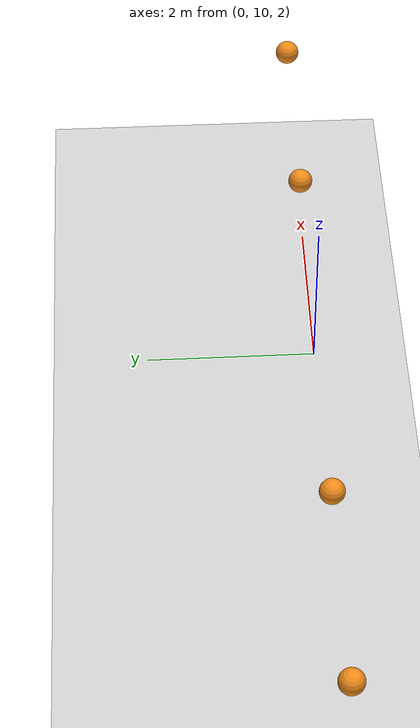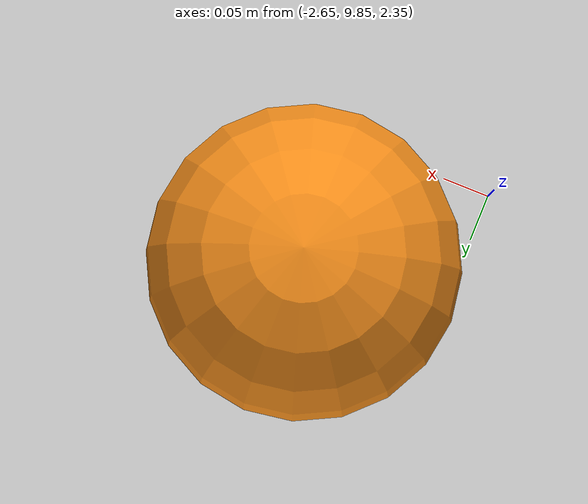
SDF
<sdf version="1.5">
 <world name="default">
  <include><uri>model://sun</uri></include>
  <include><uri>model://ground_plane</uri></include>
  <include>
   <uri>model://danger_sphere_obstacle</uri>
   <name>obstacle_1</name>
   <pose>5.0 10.0 2.5 0 0 0</pose>
  </include>
  <include>
   <uri>model://danger_sphere_obstacle</uri>
   <name>obstacle_2</name>
   <pose>2.5 10.0 2.5 0 0 0</pose>
  </include>
  <include>
   <uri>model://danger_sphere_obstacle</uri>
   <name>obstacle_3</name>
   <pose>-2.5 10.0 2.5 0 0 0</pose>
  </include>
  <include>
   <uri>model://danger_sphere_obstacle</uri>
   <name>obstacle_4</name>
   <pose>-5.0 10.0 2.5 0 0 0</pose>
  </include>
  <physics name="default_physics" default="0" type="ode">
   <gravity>0 0 -9.8066</gravity>
   <ode>
    <solver>
     <type>quick</type>
     <iters>10</iters>
     <sor>1.3</sor>
     <use_dynamic_moi_rescaling>0</use_dynamic_moi_rescaling>
    </solver>
    <constraints>
     <cfm>0</cfm>
     <erp>0.2</erp>
     <contact_max_correcting_vel>100</contact_max_correcting_vel>
     <contact_surface_layer>0.001</contact_surface_layer>
    </constraints>
   </ode>
   <max_step_size>0.002</max_step_size>
   <real_time_factor>1</real_time_factor>
   <real_time_update_rate>500</real_time_update_rate>
   <magnetic_field>6.0e-6 2.3e-5 -4.2e-5</magnetic_field>
  </physics>
 </world>
</sdf>

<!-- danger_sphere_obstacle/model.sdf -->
<sdf version="1.6">
  <model name="danger_sphere_obstacle">
    <link name="base">
      <collision name="collision">
        <geometry>
          <box>
            <size>0.3 0.3 0.3</size>
          </box>
        </geometry>
      </collision>
      <visual name="visual">
        <cast_shadows>true</cast_shadows>
        <material>
            <script>
                <uri>file://media/materials/scripts/gazebo.material</uri>
                <name>Gazebo/Orange</name>
            </script>
        </material>
        <geometry>
          <sphere>
            <radius>0.15</radius>
          </sphere>
        </geometry>
      </visual>
    </link>
    <plugin name="enemy_drone" filename="libenemy_drone.so">
      <x_min>-7.5</x_min>
      <x_max>7.5</x_max>
      <y_min>-11.5</y_min>
      <y_max>11.5</y_max>
    </plugin>
  </model>
</sdf>
